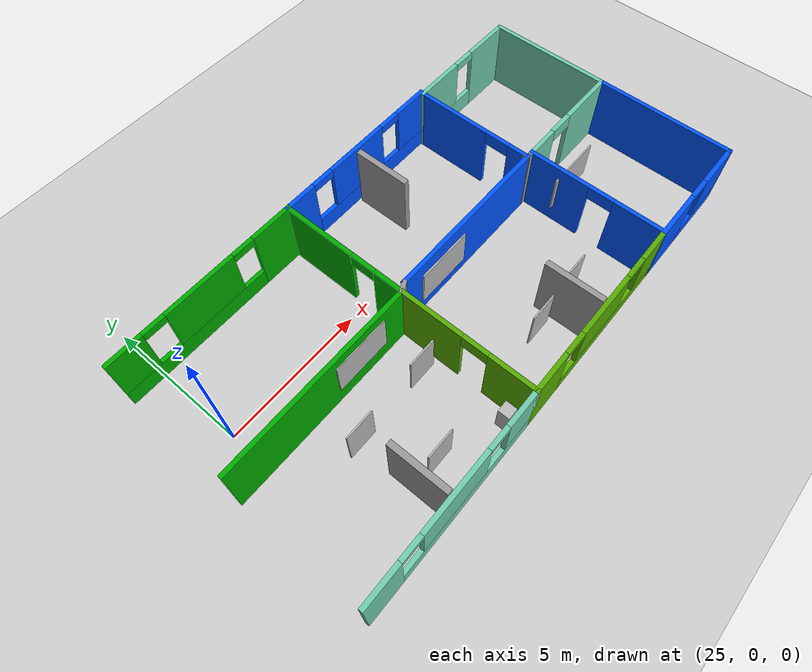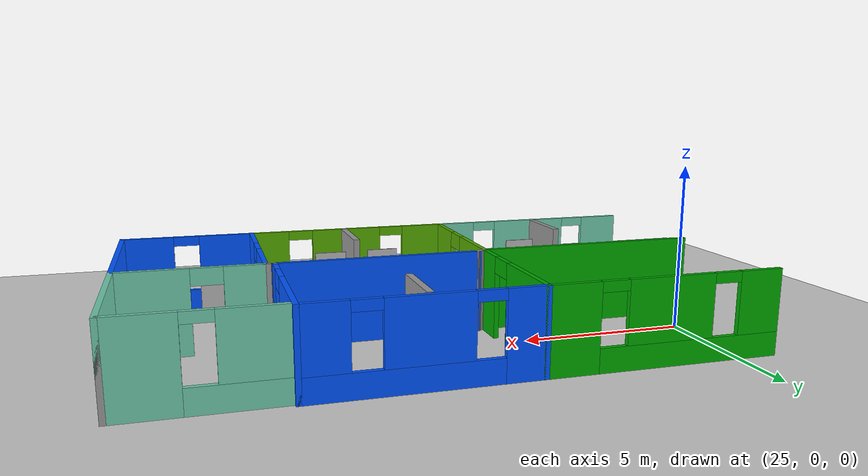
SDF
<sdf version="1.6">
 <world name="default">
  <model name="ground_plane">
   <static>1</static>
   <link name="link">
    <collision name="collision">
     <geometry><plane><normal>0 0 1</normal><size>100 100</size></plane></geometry>
     <surface><friction><ode><mu>100</mu><mu2>50</mu2></ode></friction></surface>
    </collision>
    <visual name="visual">
     <cast_shadows>0</cast_shadows>
     <geometry><plane><normal>0 0 1</normal><size>100 100</size></plane></geometry>
     <material>
      <script><uri>file://media/materials/scripts/gazebo.material</uri><name>Gazebo/Grey</name></script>
     </material>
    </visual>
   </link>
  </model>
  <model name="gallery2">
   <pose>17.6734 2.86394 0 0 -0 0</pose>
   <link name="Wall_50">
    <collision name="Wall_50_Collision">
     <geometry><box><size>7 0.15 2.5</size></box></geometry>
     <pose>0 0 1.25 0 -0 0</pose>
    </collision>
    <visual name="Wall_50_Visual">
     <pose>0 0 1.25 0 -0 0</pose>
     <geometry><box><size>7 0.15 2.5</size></box></geometry>
     <material>
      <script><uri>file://media/materials/scripts/gazebo.material</uri><name>Gazebo/Grey</name></script>
      <ambient>0 0.666667 0 1</ambient>
     </material>
     <meta><layer>0</layer></meta>
    </visual>
    <pose>9.6624 -4.40606 0 0 -0 0</pose>
   </link>
   <link name="Wall_51">
    <pose>13.0874 -2.10606 0 0 -0 1.5708</pose>
    <visual name="Wall_51_Visual_0">
     <pose>-1.81304 0 1.25 0 -0 0</pose>
     <geometry><box><size>1.12391 0.15 2.5</size></box></geometry>
     <material>
      <script><uri>file://media/materials/scripts/gazebo.material</uri><name>Gazebo/Grey</name></script>
      <ambient>0 0.666667 0 1</ambient>
     </material>
     <meta><layer>0</layer></meta>
    </visual>
    <collision name="Wall_51_Collision_0">
     <geometry><box><size>1.12391 0.15 2.5</size></box></geometry>
     <pose>-1.81304 0 1.25 0 -0 0</pose>
    </collision>
    <visual name="Wall_51_Visual_1">
     <pose>1.01196 0 1.25 0 -0 0</pose>
     <geometry><box><size>2.72608 0.15 2.5</size></box></geometry>
     <material>
      <script><uri>file://media/materials/scripts/gazebo.material</uri><name>Gazebo/Grey</name></script>
      <ambient>0 0.666667 0 1</ambient>
     </material>
     <meta><layer>0</layer></meta>
    </visual>
    <collision name="Wall_51_Collision_1">
     <geometry><box><size>2.72608 0.15 2.5</size></box></geometry>
     <pose>1.01196 0 1.25 0 -0 0</pose>
    </collision>
    <visual name="Wall_51_Visual_2">
     <pose>-0.801085 0 2.25 0 -0 0</pose>
     <geometry><box><size>0.9 0.15 0.5</size></box></geometry>
     <material>
      <script><uri>file://media/materials/scripts/gazebo.material</uri><name>Gazebo/Grey</name></script>
      <ambient>0 0.666667 0 1</ambient>
     </material>
     <meta><layer>0</layer></meta>
    </visual>
    <collision name="Wall_51_Collision_2">
     <geometry><box><size>0.9 0.15 0.5</size></box></geometry>
     <pose>-0.801085 0 2.25 0 -0 0</pose>
    </collision>
   </link>
   <link name="Wall_52">
    <pose>9.6624 0.193941 0 0 -0 3.14159</pose>
    <visual name="Wall_52_Visual_0">
     <pose>-2.72135 0 1.25 0 -0 0</pose>
     <geometry><box><size>1.5573 0.15 2.5</size></box></geometry>
     <material>
      <script><uri>file://media/materials/scripts/gazebo.material</uri><name>Gazebo/Grey</name></script>
      <ambient>0 0.666667 0 1</ambient>
     </material>
     <meta><layer>0</layer></meta>
    </visual>
    <collision name="Wall_52_Collision_0">
     <geometry><box><size>1.5573 0.15 2.5</size></box></geometry>
     <pose>-2.72135 0 1.25 0 -0 0</pose>
    </collision>
    <visual name="Wall_52_Visual_1">
     <pose>0.77865 0 0.35 0 -0 0</pose>
     <geometry><box><size>5.4427 0.15 0.7</size></box></geometry>
     <material>
      <script><uri>file://media/materials/scripts/gazebo.material</uri><name>Gazebo/Grey</name></script>
      <ambient>0 0.666667 0 1</ambient>
     </material>
     <meta><layer>0</layer></meta>
    </visual>
    <collision name="Wall_52_Collision_1">
     <geometry><box><size>5.4427 0.15 0.7</size></box></geometry>
     <pose>0.77865 0 0.35 0 -0 0</pose>
    </collision>
    <visual name="Wall_52_Visual_2">
     <pose>0.136207 0 1.6 0 -0 0</pose>
     <geometry><box><size>2.55781 0.15 1.8</size></box></geometry>
     <material>
      <script><uri>file://media/materials/scripts/gazebo.material</uri><name>Gazebo/Grey</name></script>
      <ambient>0 0.666667 0 1</ambient>
     </material>
     <meta><layer>0</layer></meta>
    </visual>
    <collision name="Wall_52_Collision_2">
     <geometry><box><size>2.55781 0.15 1.8</size></box></geometry>
     <pose>0.136207 0 1.6 0 -0 0</pose>
    </collision>
    <visual name="Wall_52_Visual_3">
     <pose>2.85756 0 1.6 0 -0 0</pose>
     <geometry><box><size>1.28489 0.15 1.8</size></box></geometry>
     <material>
      <script><uri>file://media/materials/scripts/gazebo.material</uri><name>Gazebo/Grey</name></script>
      <ambient>0 0.666667 0 1</ambient>
     </material>
     <meta><layer>0</layer></meta>
    </visual>
    <collision name="Wall_52_Collision_3">
     <geometry><box><size>1.28489 0.15 1.8</size></box></geometry>
     <pose>2.85756 0 1.6 0 -0 0</pose>
    </collision>
    <visual name="Wall_52_Visual_4">
     <pose>-1.5427 0 2.35 0 -0 0</pose>
     <geometry><box><size>0.8 0.15 0.3</size></box></geometry>
     <material>
      <script><uri>file://media/materials/scripts/gazebo.material</uri><name>Gazebo/Grey</name></script>
      <ambient>0 0.666667 0 1</ambient>
     </material>
     <meta><layer>0</layer></meta>
    </visual>
    <collision name="Wall_52_Collision_4">
     <geometry><box><size>0.8 0.15 0.3</size></box></geometry>
     <pose>-1.5427 0 2.35 0 -0 0</pose>
    </collision>
    <visual name="Wall_52_Visual_5">
     <pose>1.81511 0 2.35 0 -0 0</pose>
     <geometry><box><size>0.8 0.15 0.3</size></box></geometry>
     <material>
      <script><uri>file://media/materials/scripts/gazebo.material</uri><name>Gazebo/Grey</name></script>
      <ambient>0 0.666667 0 1</ambient>
     </material>
     <meta><layer>0</layer></meta>
    </visual>
    <collision name="Wall_52_Collision_5">
     <geometry><box><size>0.8 0.15 0.3</size></box></geometry>
     <pose>1.81511 0 2.35 0 -0 0</pose>
    </collision>
   </link>
   <link name="Wall_54">
    <pose>9.6624 -9.10606 0 0 -0 0</pose>
    <visual name="Wall_54_Visual_0">
     <pose>-2.81374 0 1.25 0 -0 0</pose>
     <geometry><box><size>1.37253 0.15 2.5</size></box></geometry>
     <material>
      <script><uri>file://media/materials/scripts/gazebo.material</uri><name>Gazebo/Grey</name></script>
      <ambient>0.435294 0.796078 0.67451 1</ambient>
     </material>
     <meta><layer>0</layer></meta>
    </visual>
    <collision name="Wall_54_Collision_0">
     <geometry><box><size>1.37253 0.15 2.5</size></box></geometry>
     <pose>-2.81374 0 1.25 0 -0 0</pose>
    </collision>
    <visual name="Wall_54_Visual_1">
     <pose>0.686264 0 0.35 0 -0 0</pose>
     <geometry><box><size>5.62747 0.15 0.7</size></box></geometry>
     <material>
      <script><uri>file://media/materials/scripts/gazebo.material</uri><name>Gazebo/Grey</name></script>
      <ambient>0.435294 0.796078 0.67451 1</ambient>
     </material>
     <meta><layer>0</layer></meta>
    </visual>
    <collision name="Wall_54_Collision_1">
     <geometry><box><size>5.62747 0.15 0.7</size></box></geometry>
     <pose>0.686264 0 0.35 0 -0 0</pose>
    </collision>
    <visual name="Wall_54_Visual_2">
     <pose>0.012181 0 1.6 0 -0 0</pose>
     <geometry><box><size>2.67931 0.15 1.8</size></box></geometry>
     <material>
      <script><uri>file://media/materials/scripts/gazebo.material</uri><name>Gazebo/Grey</name></script>
      <ambient>0.435294 0.796078 0.67451 1</ambient>
     </material>
     <meta><layer>0</layer></meta>
    </visual>
    <collision name="Wall_54_Collision_2">
     <geometry><box><size>2.67931 0.15 1.8</size></box></geometry>
     <pose>0.012181 0 1.6 0 -0 0</pose>
    </collision>
    <visual name="Wall_54_Visual_3">
     <pose>2.82592 0 1.6 0 -0 0</pose>
     <geometry><box><size>1.34817 0.15 1.8</size></box></geometry>
     <material>
      <script><uri>file://media/materials/scripts/gazebo.material</uri><name>Gazebo/Grey</name></script>
      <ambient>0.435294 0.796078 0.67451 1</ambient>
     </material>
     <meta><layer>0</layer></meta>
    </visual>
    <collision name="Wall_54_Collision_3">
     <geometry><box><size>1.34817 0.15 1.8</size></box></geometry>
     <pose>2.82592 0 1.6 0 -0 0</pose>
    </collision>
    <visual name="Wall_54_Visual_4">
     <pose>-1.72747 0 2.35 0 -0 0</pose>
     <geometry><box><size>0.8 0.15 0.3</size></box></geometry>
     <material>
      <script><uri>file://media/materials/scripts/gazebo.material</uri><name>Gazebo/Grey</name></script>
      <ambient>0.435294 0.796078 0.67451 1</ambient>
     </material>
     <meta><layer>0</layer></meta>
    </visual>
    <collision name="Wall_54_Collision_4">
     <geometry><box><size>0.8 0.15 0.3</size></box></geometry>
     <pose>-1.72747 0 2.35 0 -0 0</pose>
    </collision>
    <visual name="Wall_54_Visual_5">
     <pose>1.75183 0 2.35 0 -0 0</pose>
     <geometry><box><size>0.8 0.15 0.3</size></box></geometry>
     <material>
      <script><uri>file://media/materials/scripts/gazebo.material</uri><name>Gazebo/Grey</name></script>
      <ambient>0.435294 0.796078 0.67451 1</ambient>
     </material>
     <meta><layer>0</layer></meta>
    </visual>
    <collision name="Wall_54_Collision_5">
     <geometry><box><size>0.8 0.15 0.3</size></box></geometry>
     <pose>1.75183 0 2.35 0 -0 0</pose>
    </collision>
   </link>
   <link name="Wall_55">
    <pose>13.0874 -6.75606 0 0 -0 1.5708</pose>
    <visual name="Wall_55_Visual_0">
     <pose>-1.58786 0 1.25 0 -0 0</pose>
     <geometry><box><size>1.67428 0.15 2.5</size></box></geometry>
     <material>
      <script><uri>file://media/materials/scripts/gazebo.material</uri><name>Gazebo/Grey</name></script>
      <ambient>0.333333 0.666667 0 1</ambient>
     </material>
     <meta><layer>0</layer></meta>
    </visual>
    <collision name="Wall_55_Collision_0">
     <geometry><box><size>1.67428 0.15 2.5</size></box></geometry>
     <pose>-1.58786 0 1.25 0 -0 0</pose>
    </collision>
    <visual name="Wall_55_Visual_1">
     <pose>1.28714 0 1.25 0 -0 0</pose>
     <geometry><box><size>2.27572 0.15 2.5</size></box></geometry>
     <material>
      <script><uri>file://media/materials/scripts/gazebo.material</uri><name>Gazebo/Grey</name></script>
      <ambient>0.333333 0.666667 0 1</ambient>
     </material>
     <meta><layer>0</layer></meta>
    </visual>
    <collision name="Wall_55_Collision_1">
     <geometry><box><size>2.27572 0.15 2.5</size></box></geometry>
     <pose>1.28714 0 1.25 0 -0 0</pose>
    </collision>
    <visual name="Wall_55_Visual_2">
     <pose>-0.300716 0 2.25 0 -0 0</pose>
     <geometry><box><size>0.9 0.15 0.5</size></box></geometry>
     <material>
      <script><uri>file://media/materials/scripts/gazebo.material</uri><name>Gazebo/Grey</name></script>
      <ambient>0.333333 0.666667 0 1</ambient>
     </material>
     <meta><layer>0</layer></meta>
    </visual>
    <collision name="Wall_55_Collision_2">
     <geometry><box><size>0.9 0.15 0.5</size></box></geometry>
     <pose>-0.300716 0 2.25 0 -0 0</pose>
    </collision>
   </link>
   <link name="Wall_57">
    <pose>16.2624 0.193941 0 0 -0 0</pose>
    <visual name="Wall_57_Visual_0">
     <pose>-2.65451 0 1.25 0 -0 0</pose>
     <geometry><box><size>1.19097 0.15 2.5</size></box></geometry>
     <material>
      <script><uri>file://media/materials/scripts/gazebo.material</uri><name>Gazebo/Grey</name></script>
      <ambient>0 0.333333 1 1</ambient>
     </material>
     <meta><layer>0</layer></meta>
    </visual>
    <collision name="Wall_57_Collision_0">
     <geometry><box><size>1.19097 0.15 2.5</size></box></geometry>
     <pose>-2.65451 0 1.25 0 -0 0</pose>
    </collision>
    <visual name="Wall_57_Visual_1">
     <pose>0.595485 0 0.35 0 -0 0</pose>
     <geometry><box><size>5.30903 0.15 0.7</size></box></geometry>
     <material>
      <script><uri>file://media/materials/scripts/gazebo.material</uri><name>Gazebo/Grey</name></script>
      <ambient>0 0.333333 1 1</ambient>
     </material>
     <meta><layer>0</layer></meta>
    </visual>
    <collision name="Wall_57_Collision_1">
     <geometry><box><size>5.30903 0.15 0.7</size></box></geometry>
     <pose>0.595485 0 0.35 0 -0 0</pose>
    </collision>
    <visual name="Wall_57_Visual_2">
     <pose>-0.081252 0 1.6 0 -0 0</pose>
     <geometry><box><size>2.35556 0.15 1.8</size></box></geometry>
     <material>
      <script><uri>file://media/materials/scripts/gazebo.material</uri><name>Gazebo/Grey</name></script>
      <ambient>0 0.333333 1 1</ambient>
     </material>
     <meta><layer>0</layer></meta>
    </visual>
    <collision name="Wall_57_Collision_2">
     <geometry><box><size>2.35556 0.15 1.8</size></box></geometry>
     <pose>-0.081252 0 1.6 0 -0 0</pose>
    </collision>
    <visual name="Wall_57_Visual_3">
     <pose>2.57326 0 1.6 0 -0 0</pose>
     <geometry><box><size>1.35347 0.15 1.8</size></box></geometry>
     <material>
      <script><uri>file://media/materials/scripts/gazebo.material</uri><name>Gazebo/Grey</name></script>
      <ambient>0 0.333333 1 1</ambient>
     </material>
     <meta><layer>0</layer></meta>
    </visual>
    <collision name="Wall_57_Collision_3">
     <geometry><box><size>1.35347 0.15 1.8</size></box></geometry>
     <pose>2.57326 0 1.6 0 -0 0</pose>
    </collision>
    <visual name="Wall_57_Visual_4">
     <pose>-1.65903 0 2.35 0 -0 0</pose>
     <geometry><box><size>0.8 0.15 0.3</size></box></geometry>
     <material>
      <script><uri>file://media/materials/scripts/gazebo.material</uri><name>Gazebo/Grey</name></script>
      <ambient>0 0.333333 1 1</ambient>
     </material>
     <meta><layer>0</layer></meta>
    </visual>
    <collision name="Wall_57_Collision_4">
     <geometry><box><size>0.8 0.15 0.3</size></box></geometry>
     <pose>-1.65903 0 2.35 0 -0 0</pose>
    </collision>
    <visual name="Wall_57_Visual_5">
     <pose>1.49653 0 2.35 0 -0 0</pose>
     <geometry><box><size>0.8 0.15 0.3</size></box></geometry>
     <material>
      <script><uri>file://media/materials/scripts/gazebo.material</uri><name>Gazebo/Grey</name></script>
      <ambient>0 0.333333 1 1</ambient>
     </material>
     <meta><layer>0</layer></meta>
    </visual>
    <collision name="Wall_57_Collision_5">
     <geometry><box><size>0.8 0.15 0.3</size></box></geometry>
     <pose>1.49653 0 2.35 0 -0 0</pose>
    </collision>
   </link>
   <link name="Wall_58">
    <pose>19.4374 -1.98106 0 0 0 -1.5708</pose>
    <visual name="Wall_58_Visual_0">
     <pose>-0.807157 0 1.25 0 -0 0</pose>
     <geometry><box><size>2.88569 0.15 2.5</size></box></geometry>
     <material>
      <script><uri>file://media/materials/scripts/gazebo.material</uri><name>Gazebo/Grey</name></script>
      <ambient>0 0.333333 1 1</ambient>
     </material>
     <meta><layer>0</layer></meta>
    </visual>
    <collision name="Wall_58_Collision_0">
     <geometry><box><size>2.88569 0.15 2.5</size></box></geometry>
     <pose>-0.807157 0 1.25 0 -0 0</pose>
    </collision>
    <visual name="Wall_58_Visual_1">
     <pose>1.89284 0 1.25 0 -0 0</pose>
     <geometry><box><size>0.714314 0.15 2.5</size></box></geometry>
     <material>
      <script><uri>file://media/materials/scripts/gazebo.material</uri><name>Gazebo/Grey</name></script>
      <ambient>0 0.333333 1 1</ambient>
     </material>
     <meta><layer>0</layer></meta>
    </visual>
    <collision name="Wall_58_Collision_1">
     <geometry><box><size>0.714314 0.15 2.5</size></box></geometry>
     <pose>1.89284 0 1.25 0 -0 0</pose>
    </collision>
    <visual name="Wall_58_Visual_2">
     <pose>1.08569 0 2.25 0 -0 0</pose>
     <geometry><box><size>0.9 0.15 0.5</size></box></geometry>
     <material>
      <script><uri>file://media/materials/scripts/gazebo.material</uri><name>Gazebo/Grey</name></script>
      <ambient>0 0.333333 1 1</ambient>
     </material>
     <meta><layer>0</layer></meta>
    </visual>
    <collision name="Wall_58_Collision_2">
     <geometry><box><size>0.9 0.15 0.5</size></box></geometry>
     <pose>1.08569 0 2.25 0 -0 0</pose>
    </collision>
   </link>
   <link name="Wall_59">
    <collision name="Wall_59_Collision">
     <geometry><box><size>0.25 0.15 2.5</size></box></geometry>
     <pose>0 0 1.25 0 -0 0</pose>
    </collision>
    <visual name="Wall_59_Visual">
     <pose>0 0 1.25 0 -0 0</pose>
     <geometry><box><size>0.25 0.15 2.5</size></box></geometry>
     <material>
      <script><uri>file://media/materials/scripts/gazebo.material</uri><name>Gazebo/Grey</name></script>
      <ambient>1 1 1 1</ambient>
     </material>
     <meta><layer>0</layer></meta>
    </visual>
    <pose>19.4503 -4.20435 0 0 0 -1.309</pose>
   </link>
   <link name="Wall_60">
    <collision name="Wall_60_Collision">
     <geometry><box><size>6.25 0.15 2.5</size></box></geometry>
     <pose>0 0 1.25 0 -0 0</pose>
    </collision>
    <visual name="Wall_60_Visual">
     <pose>0 0 1.25 0 -0 0</pose>
     <geometry><box><size>6.25 0.15 2.5</size></box></geometry>
     <material>
      <script><uri>file://media/materials/scripts/gazebo.material</uri><name>Gazebo/Grey</name></script>
      <ambient>0 0.333333 1 1</ambient>
     </material>
     <meta><layer>0</layer></meta>
    </visual>
    <pose>16.4133 -4.25265 0 0 -0 3.14159</pose>
   </link>
   <link name="Wall_61">
    <collision name="Wall_61_Collision">
     <geometry><box><size>0.465665 0.15 2.5</size></box></geometry>
     <pose>0 0 1.25 0 -0 0</pose>
    </collision>
    <visual name="Wall_61_Visual">
     <pose>0 0 1.25 0 -0 0</pose>
     <geometry><box><size>0.465665 0.15 2.5</size></box></geometry>
     <material>
      <script><uri>file://media/materials/scripts/gazebo.material</uri><name>Gazebo/Grey</name></script>
      <ambient>1 1 1 1</ambient>
     </material>
     <meta><layer>0</layer></meta>
    </visual>
    <pose>13.2253 -4.32935 0 0 0 -2.63411</pose>
   </link>
   <link name="Wall_63">
    <pose>16.3874 -9.10606 0 0 -0 0</pose>
    <visual name="Wall_63_Visual_0">
     <pose>-2.63533 0 1.25 0 -0 0</pose>
     <geometry><box><size>1.47934 0.15 2.5</size></box></geometry>
     <material>
      <script><uri>file://media/materials/scripts/gazebo.material</uri><name>Gazebo/Grey</name></script>
      <ambient>0.333333 0.666667 0 1</ambient>
     </material>
     <meta><layer>0</layer></meta>
    </visual>
    <collision name="Wall_63_Collision_0">
     <geometry><box><size>1.47934 0.15 2.5</size></box></geometry>
     <pose>-2.63533 0 1.25 0 -0 0</pose>
    </collision>
    <visual name="Wall_63_Visual_1">
     <pose>0.73967 0 0.35 0 -0 0</pose>
     <geometry><box><size>5.27066 0.15 0.7</size></box></geometry>
     <material>
      <script><uri>file://media/materials/scripts/gazebo.material</uri><name>Gazebo/Grey</name></script>
      <ambient>0.333333 0.666667 0 1</ambient>
     </material>
     <meta><layer>0</layer></meta>
    </visual>
    <collision name="Wall_63_Collision_1">
     <geometry><box><size>5.27066 0.15 0.7</size></box></geometry>
     <pose>0.73967 0 0.35 0 -0 0</pose>
    </collision>
    <visual name="Wall_63_Visual_2">
     <pose>0.082933 0 1.6 0 -0 0</pose>
     <geometry><box><size>2.35719 0.15 1.8</size></box></geometry>
     <material>
      <script><uri>file://media/materials/scripts/gazebo.material</uri><name>Gazebo/Grey</name></script>
      <ambient>0.333333 0.666667 0 1</ambient>
     </material>
     <meta><layer>0</layer></meta>
    </visual>
    <collision name="Wall_63_Collision_2">
     <geometry><box><size>2.35719 0.15 1.8</size></box></geometry>
     <pose>0.082933 0 1.6 0 -0 0</pose>
    </collision>
    <visual name="Wall_63_Visual_3">
     <pose>2.71826 0 1.6 0 -0 0</pose>
     <geometry><box><size>1.31347 0.15 1.8</size></box></geometry>
     <material>
      <script><uri>file://media/materials/scripts/gazebo.material</uri><name>Gazebo/Grey</name></script>
      <ambient>0.333333 0.666667 0 1</ambient>
     </material>
     <meta><layer>0</layer></meta>
    </visual>
    <collision name="Wall_63_Collision_3">
     <geometry><box><size>1.31347 0.15 1.8</size></box></geometry>
     <pose>2.71826 0 1.6 0 -0 0</pose>
    </collision>
    <visual name="Wall_63_Visual_4">
     <pose>-1.49566 0 2.35 0 -0 0</pose>
     <geometry><box><size>0.8 0.15 0.3</size></box></geometry>
     <material>
      <script><uri>file://media/materials/scripts/gazebo.material</uri><name>Gazebo/Grey</name></script>
      <ambient>0.333333 0.666667 0 1</ambient>
     </material>
     <meta><layer>0</layer></meta>
    </visual>
    <collision name="Wall_63_Collision_4">
     <geometry><box><size>0.8 0.15 0.3</size></box></geometry>
     <pose>-1.49566 0 2.35 0 -0 0</pose>
    </collision>
    <visual name="Wall_63_Visual_5">
     <pose>1.66153 0 2.35 0 -0 0</pose>
     <geometry><box><size>0.8 0.15 0.3</size></box></geometry>
     <material>
      <script><uri>file://media/materials/scripts/gazebo.material</uri><name>Gazebo/Grey</name></script>
      <ambient>0.333333 0.666667 0 1</ambient>
     </material>
     <meta><layer>0</layer></meta>
    </visual>
    <collision name="Wall_63_Collision_5">
     <geometry><box><size>0.8 0.15 0.3</size></box></geometry>
     <pose>1.66153 0 2.35 0 -0 0</pose>
    </collision>
   </link>
   <link name="Wall_64">
    <pose>19.6874 -6.68106 0 0 -0 1.5708</pose>
    <visual name="Wall_64_Visual_0">
     <pose>-1.58306 0 1.25 0 -0 0</pose>
     <geometry><box><size>1.83388 0.15 2.5</size></box></geometry>
     <material>
      <script><uri>file://media/materials/scripts/gazebo.material</uri><name>Gazebo/Grey</name></script>
      <ambient>0 0.333333 1 1</ambient>
     </material>
     <meta><layer>0</layer></meta>
    </visual>
    <collision name="Wall_64_Collision_0">
     <geometry><box><size>1.83388 0.15 2.5</size></box></geometry>
     <pose>-1.58306 0 1.25 0 -0 0</pose>
    </collision>
    <visual name="Wall_64_Visual_1">
     <pose>1.36694 0 1.25 0 -0 0</pose>
     <geometry><box><size>2.26612 0.15 2.5</size></box></geometry>
     <material>
      <script><uri>file://media/materials/scripts/gazebo.material</uri><name>Gazebo/Grey</name></script>
      <ambient>0 0.333333 1 1</ambient>
     </material>
     <meta><layer>0</layer></meta>
    </visual>
    <collision name="Wall_64_Collision_1">
     <geometry><box><size>2.26612 0.15 2.5</size></box></geometry>
     <pose>1.36694 0 1.25 0 -0 0</pose>
    </collision>
    <visual name="Wall_64_Visual_2">
     <pose>-0.216115 0 2.25 0 -0 0</pose>
     <geometry><box><size>0.9 0.15 0.5</size></box></geometry>
     <material>
      <script><uri>file://media/materials/scripts/gazebo.material</uri><name>Gazebo/Grey</name></script>
      <ambient>0 0.333333 1 1</ambient>
     </material>
     <meta><layer>0</layer></meta>
    </visual>
    <collision name="Wall_64_Collision_2">
     <geometry><box><size>0.9 0.15 0.5</size></box></geometry>
     <pose>-0.216115 0 2.25 0 -0 0</pose>
    </collision>
   </link>
   <link name="Wall_65">
    <collision name="Wall_65_Collision">
     <geometry><box><size>0.374144 0.15 2.5</size></box></geometry>
     <pose>0 0 1.25 0 -0 0</pose>
    </collision>
    <visual name="Wall_65_Visual">
     <pose>0 0 1.25 0 -0 0</pose>
     <geometry><box><size>0.374144 0.15 2.5</size></box></geometry>
     <material>
      <script><uri>file://media/materials/scripts/gazebo.material</uri><name>Gazebo/Grey</name></script>
      <ambient>1 1 1 1</ambient>
     </material>
     <meta><layer>0</layer></meta>
    </visual>
    <pose>19.5753 -4.25436 0 0 -0 3.12639</pose>
   </link>
   <link name="Wall_67">
    <pose>21.7374 -9.10606 0 0 -0 0</pose>
    <visual name="Wall_67_Visual_0">
     <pose>-1.22897 0 1.25 0 -0 0</pose>
     <geometry><box><size>1.79206 0.15 2.5</size></box></geometry>
     <material>
      <script><uri>file://media/materials/scripts/gazebo.material</uri><name>Gazebo/Grey</name></script>
      <ambient>0 0.333333 1 1</ambient>
     </material>
     <meta><layer>0</layer></meta>
    </visual>
    <collision name="Wall_67_Collision_0">
     <geometry><box><size>1.79206 0.15 2.5</size></box></geometry>
     <pose>-1.22897 0 1.25 0 -0 0</pose>
    </collision>
    <visual name="Wall_67_Visual_1">
     <pose>0.89603 0 0.35 0 -0 0</pose>
     <geometry><box><size>2.45794 0.15 0.7</size></box></geometry>
     <material>
      <script><uri>file://media/materials/scripts/gazebo.material</uri><name>Gazebo/Grey</name></script>
      <ambient>0 0.333333 1 1</ambient>
     </material>
     <meta><layer>0</layer></meta>
    </visual>
    <collision name="Wall_67_Collision_1">
     <geometry><box><size>2.45794 0.15 0.7</size></box></geometry>
     <pose>0.89603 0 0.35 0 -0 0</pose>
    </collision>
    <visual name="Wall_67_Visual_2">
     <pose>1.29603 0 1.6 0 -0 0</pose>
     <geometry><box><size>1.65794 0.15 1.8</size></box></geometry>
     <material>
      <script><uri>file://media/materials/scripts/gazebo.material</uri><name>Gazebo/Grey</name></script>
      <ambient>0 0.333333 1 1</ambient>
     </material>
     <meta><layer>0</layer></meta>
    </visual>
    <collision name="Wall_67_Collision_2">
     <geometry><box><size>1.65794 0.15 1.8</size></box></geometry>
     <pose>1.29603 0 1.6 0 -0 0</pose>
    </collision>
    <visual name="Wall_67_Visual_3">
     <pose>0.06706 0 2.35 0 -0 0</pose>
     <geometry><box><size>0.8 0.15 0.3</size></box></geometry>
     <material>
      <script><uri>file://media/materials/scripts/gazebo.material</uri><name>Gazebo/Grey</name></script>
      <ambient>0 0.333333 1 1</ambient>
     </material>
     <meta><layer>0</layer></meta>
    </visual>
    <collision name="Wall_67_Collision_3">
     <geometry><box><size>0.8 0.15 0.3</size></box></geometry>
     <pose>0.06706 0 2.35 0 -0 0</pose>
    </collision>
   </link>
   <link name="Wall_68">
    <collision name="Wall_68_Collision">
     <geometry><box><size>5 0.15 2.5</size></box></geometry>
     <pose>0 0 1.25 0 -0 0</pose>
    </collision>
    <visual name="Wall_68_Visual">
     <pose>0 0 1.25 0 -0 0</pose>
     <geometry><box><size>5 0.15 2.5</size></box></geometry>
     <material>
      <script><uri>file://media/materials/scripts/gazebo.material</uri><name>Gazebo/Grey</name></script>
      <ambient>0 0.333333 1 1</ambient>
     </material>
     <meta><layer>0</layer></meta>
    </visual>
    <pose>23.7874 -6.68106 0 0 -0 1.5708</pose>
   </link>
   <link name="Wall_69">
    <pose>21.7374 -4.25606 0 0 -0 3.14159</pose>
    <visual name="Wall_69_Visual_0">
     <pose>-1.06867 0 1.25 0 -0 0</pose>
     <geometry><box><size>2.11266 0.15 2.5</size></box></geometry>
     <material>
      <script><uri>file://media/materials/scripts/gazebo.material</uri><name>Gazebo/Grey</name></script>
      <ambient>0.435294 0.796078 0.67451 1</ambient>
     </material>
     <meta><layer>0</layer></meta>
    </visual>
    <collision name="Wall_69_Collision_0">
     <geometry><box><size>2.11266 0.15 2.5</size></box></geometry>
     <pose>-1.06867 0 1.25 0 -0 0</pose>
    </collision>
    <visual name="Wall_69_Visual_1">
     <pose>1.50633 0 1.25 0 -0 0</pose>
     <geometry><box><size>1.23734 0.15 2.5</size></box></geometry>
     <material>
      <script><uri>file://media/materials/scripts/gazebo.material</uri><name>Gazebo/Grey</name></script>
      <ambient>0.435294 0.796078 0.67451 1</ambient>
     </material>
     <meta><layer>0</layer></meta>
    </visual>
    <collision name="Wall_69_Collision_1">
     <geometry><box><size>1.23734 0.15 2.5</size></box></geometry>
     <pose>1.50633 0 1.25 0 -0 0</pose>
    </collision>
    <visual name="Wall_69_Visual_2">
     <pose>0.437662 0 2.25 0 -0 0</pose>
     <geometry><box><size>0.9 0.15 0.5</size></box></geometry>
     <material>
      <script><uri>file://media/materials/scripts/gazebo.material</uri><name>Gazebo/Grey</name></script>
      <ambient>0.435294 0.796078 0.67451 1</ambient>
     </material>
     <meta><layer>0</layer></meta>
    </visual>
    <collision name="Wall_69_Collision_2">
     <geometry><box><size>0.9 0.15 0.5</size></box></geometry>
     <pose>0.437662 0 2.25 0 -0 0</pose>
    </collision>
   </link>
   <link name="Wall_71">
    <collision name="Wall_71_Collision">
     <geometry><box><size>4.5 0.15 2.5</size></box></geometry>
     <pose>0 0 1.25 0 -0 0</pose>
    </collision>
    <visual name="Wall_71_Visual">
     <pose>0 0 1.25 0 -0 0</pose>
     <geometry><box><size>4.5 0.15 2.5</size></box></geometry>
     <material>
      <script><uri>file://media/materials/scripts/gazebo.material</uri><name>Gazebo/Grey</name></script>
      <ambient>0.435294 0.796078 0.67451 1</ambient>
     </material>
     <meta><layer>0</layer></meta>
    </visual>
    <pose>23.7874 -2.08106 0 0 -0 1.5708</pose>
   </link>
   <link name="Wall_72">
    <collision name="Wall_72_Collision">
     <geometry><box><size>0.15 0.15 2.5</size></box></geometry>
     <pose>0 0 1.25 0 -0 0</pose>
    </collision>
    <visual name="Wall_72_Visual">
     <pose>0 0 1.25 0 -0 0</pose>
     <geometry><box><size>0.15 0.15 2.5</size></box></geometry>
     <material>
      <script><uri>file://media/materials/scripts/gazebo.material</uri><name>Gazebo/Grey</name></script>
      <ambient>1 1 1 1</ambient>
     </material>
     <meta><layer>0</layer></meta>
    </visual>
    <pose>23.7874 0.093941 0 0 -0 0</pose>
   </link>
   <link name="Wall_73">
    <collision name="Wall_73_Collision">
     <geometry><box><size>0.15 0.15 2.5</size></box></geometry>
     <pose>0 0 1.25 0 -0 0</pose>
    </collision>
    <visual name="Wall_73_Visual">
     <pose>0 0 1.25 0 -0 0</pose>
     <geometry><box><size>0.15 0.15 2.5</size></box></geometry>
     <material>
      <script><uri>file://media/materials/scripts/gazebo.material</uri><name>Gazebo/Grey</name></script>
      <ambient>1 1 1 1</ambient>
     </material>
     <meta><layer>0</layer></meta>
    </visual>
    <pose>23.7874 0.093941 0 0 -0 0</pose>
   </link>
   <link name="Wall_74">
    <pose>21.6124 0.093941 0 0 -0 3.14159</pose>
    <visual name="Wall_74_Visual_0">
     <pose>-1.34012 0 1.25 0 -0 0</pose>
     <geometry><box><size>1.81976 0.15 2.5</size></box></geometry>
     <material>
      <script><uri>file://media/materials/scripts/gazebo.material</uri><name>Gazebo/Grey</name></script>
      <ambient>0.435294 0.796078 0.67451 1</ambient>
     </material>
     <meta><layer>0</layer></meta>
    </visual>
    <collision name="Wall_74_Collision_0">
     <geometry><box><size>1.81976 0.15 2.5</size></box></geometry>
     <pose>-1.34012 0 1.25 0 -0 0</pose>
    </collision>
    <visual name="Wall_74_Visual_1">
     <pose>0.90988 0 0.35 0 -0 0</pose>
     <geometry><box><size>2.68024 0.15 0.7</size></box></geometry>
     <material>
      <script><uri>file://media/materials/scripts/gazebo.material</uri><name>Gazebo/Grey</name></script>
      <ambient>0.435294 0.796078 0.67451 1</ambient>
     </material>
     <meta><layer>0</layer></meta>
    </visual>
    <collision name="Wall_74_Collision_1">
     <geometry><box><size>2.68024 0.15 0.7</size></box></geometry>
     <pose>0.90988 0 0.35 0 -0 0</pose>
    </collision>
    <visual name="Wall_74_Visual_2">
     <pose>1.30988 0 1.6 0 -0 0</pose>
     <geometry><box><size>1.88024 0.15 1.8</size></box></geometry>
     <material>
      <script><uri>file://media/materials/scripts/gazebo.material</uri><name>Gazebo/Grey</name></script>
      <ambient>0.435294 0.796078 0.67451 1</ambient>
     </material>
     <meta><layer>0</layer></meta>
    </visual>
    <collision name="Wall_74_Collision_2">
     <geometry><box><size>1.88024 0.15 1.8</size></box></geometry>
     <pose>1.30988 0 1.6 0 -0 0</pose>
    </collision>
    <visual name="Wall_74_Visual_3">
     <pose>-0.030239 0 2.35 0 -0 0</pose>
     <geometry><box><size>0.8 0.15 0.3</size></box></geometry>
     <material>
      <script><uri>file://media/materials/scripts/gazebo.material</uri><name>Gazebo/Grey</name></script>
      <ambient>0.435294 0.796078 0.67451 1</ambient>
     </material>
     <meta><layer>0</layer></meta>
    </visual>
    <collision name="Wall_74_Collision_3">
     <geometry><box><size>0.8 0.15 0.3</size></box></geometry>
     <pose>-0.030239 0 2.35 0 -0 0</pose>
    </collision>
   </link>
   <static>1</static>
  </model>
  <model name="Decoration2">
   <link name="link_1">
    <inertial>
     <mass>1</mass>
     <inertia>
      <ixx>0.166667</ixx>
      <ixy>0</ixy>
      <ixz>0</ixz>
      <iyy>0.166667</iyy>
      <iyz>0</iyz>
      <izz>0.166667</izz>
     </inertia>
    </inertial>
    <visual name="visual">
     <geometry><box><size>2 0.2 2.5</size></box></geometry>
     <material>
      <lighting>1</lighting>
      <script><uri>file://media/materials/scripts/gazebo.material</uri><name>Gazebo/Grey</name></script>
      <ambient>0.3 0.3 0.3 1</ambient>
      <diffuse>0.7 0.7 0.7 1</diffuse>
      <specular>0.01 0.01 0.01 1</specular>
      <emissive>0 0 0 1</emissive>
      <shader type="vertex"><normal_map>__default__</normal_map></shader>
     </material>
    </visual>
    <collision name="collision">
     <geometry><box><size>2 0.2 2.5</size></box></geometry>
     <surface>
      <friction>
       <ode><mu>1</mu><mu2>1</mu2><fdir1>0 0 0</fdir1><slip1>0</slip1><slip2>0</slip2></ode>
       <torsional>
        <coefficient>1</coefficient>
        <patch_radius>0</patch_radius>
        <surface_radius>0</surface_radius>
        <use_patch_radius>1</use_patch_radius>
        <ode><slip>0</slip></ode>
       </torsional>
      </friction>
      <bounce><restitution_coefficient>0</restitution_coefficient><threshold>1e+06</threshold></bounce>
      <contact>
       <collide_without_contact>0</collide_without_contact>
       <collide_without_contact_bitmask>1</collide_without_contact_bitmask>
       <collide_bitmask>1</collide_bitmask>
       <ode>
        <soft_cfm>0</soft_cfm>
        <soft_erp>0.2</soft_erp>
        <kp>1e+13</kp>
        <kd>1</kd>
        <max_vel>0.01</max_vel>
        <min_depth>0</min_depth>
       </ode>
       <bullet>
        <split_impulse>1</split_impulse>
        <split_impulse_penetration_threshold>-0.01</split_impulse_penetration_threshold>
        <soft_cfm>0</soft_cfm>
        <soft_erp>0.2</soft_erp>
        <kp>1e+13</kp>
        <kd>1</kd>
       </bullet>
      </contact>
     </surface>
    </collision>
   </link>
   <static>0</static>
   <pose>33.8182 1.90409 1.25 0 -1e-06 1.57716</pose>
  </model>
  <include>
   <pose>38.1292 -2.54451 1.4 0 -0 0</pose>
   <name>rooma_img1p</name>
   <uri>model://leobot_gazebo/models/rooma_img1p</uri>
  </include>
  <include>
   <pose>32.6946 -1.55837 1.4 0 -0 0</pose>
   <name>rooma_img2p</name>
   <uri>model://leobot_gazebo/models/rooma_img2p</uri>
  </include>
  <model name="Decoration2_1">
   <link name="link_1">
    <inertial>
     <mass>1</mass>
     <inertia>
      <ixx>0.166667</ixx>
      <ixy>0</ixy>
      <ixz>0</ixz>
      <iyy>0.166667</iyy>
      <iyz>0</iyz>
      <izz>0.166667</izz>
     </inertia>
    </inertial>
    <visual name="visual">
     <geometry><box><size>2 0.2 2.5</size></box></geometry>
     <material>
      <lighting>1</lighting>
      <script><uri>file://media/materials/scripts/gazebo.material</uri><name>Gazebo/Grey</name></script>
      <ambient>0.3 0.3 0.3 1</ambient>
      <diffuse>0.7 0.7 0.7 1</diffuse>
      <specular>0.01 0.01 0.01 1</specular>
      <emissive>0 0 0 1</emissive>
      <shader type="vertex"><normal_map>__default__</normal_map></shader>
     </material>
    </visual>
    <collision name="collision">
     <geometry><box><size>2 0.2 2.5</size></box></geometry>
     <surface>
      <friction>
       <ode><mu>1</mu><mu2>1</mu2><fdir1>0 0 0</fdir1><slip1>0</slip1><slip2>0</slip2></ode>
       <torsional>
        <coefficient>1</coefficient>
        <patch_radius>0</patch_radius>
        <surface_radius>0</surface_radius>
        <use_patch_radius>1</use_patch_radius>
        <ode><slip>0</slip></ode>
       </torsional>
      </friction>
      <bounce><restitution_coefficient>0</restitution_coefficient><threshold>1e+06</threshold></bounce>
      <contact>
       <collide_without_contact>0</collide_without_contact>
       <collide_without_contact_bitmask>1</collide_without_contact_bitmask>
       <collide_bitmask>1</collide_bitmask>
       <ode>
        <soft_cfm>0</soft_cfm>
        <soft_erp>0.2</soft_erp>
        <kp>1e+13</kp>
        <kd>1</kd>
        <max_vel>0.01</max_vel>
        <min_depth>0</min_depth>
       </ode>
       <bullet>
        <split_impulse>1</split_impulse>
        <split_impulse_penetration_threshold>-0.01</split_impulse_penetration_threshold>
        <soft_cfm>0</soft_cfm>
        <soft_erp>0.2</soft_erp>
        <kp>1e+13</kp>
        <kd>1</kd>
       </bullet>
      </contact>
     </surface>
    </collision>
   </link>
   <static>0</static>
   <pose>34.212 -5.1409 1.25 0 1e-06 1.58085</pose>
  </model>
  <include>
   <pose>34.9577 -4.75056 1.2 0 -0 0</pose>
   <name>rooma_img4</name>
   <uri>model://leobot_gazebo/models/rooma_img4</uri>
  </include>
  <include>
   <pose>33.2007 -4.83543 1.2 0 -0 0</pose>
   <name>rooma_img5</name>
   <uri>model://leobot_gazebo/models/rooma_img5</uri>
  </include>
  <include>
   <pose>28.8815 -1.62609 1.4 0 -0 0</pose>
   <name>rooma_img6p</name>
   <uri>model://leobot_gazebo/models/rooma_img6p</uri>
  </include>
  <include>
   <pose>29.8287 -3.05859 1.2 0 -0 0</pose>
   <name>roomb_img1</name>
   <uri>model://leobot_gazebo/models/roomb_img1</uri>
  </include>
  <model name="Decoration2_2">
   <link name="link_1">
    <inertial>
     <mass>1</mass>
     <inertia>
      <ixx>0.166667</ixx>
      <ixy>0</ixy>
      <ixz>0</ixz>
      <iyy>0.166667</iyy>
      <iyz>0</iyz>
      <izz>0.166667</izz>
     </inertia>
    </inertial>
    <visual name="visual">
     <geometry><box><size>2 0.2 2.5</size></box></geometry>
     <material>
      <lighting>1</lighting>
      <script><uri>file://media/materials/scripts/gazebo.material</uri><name>Gazebo/Grey</name></script>
      <ambient>0.3 0.3 0.3 1</ambient>
      <diffuse>0.7 0.7 0.7 1</diffuse>
      <specular>0.01 0.01 0.01 1</specular>
      <emissive>0 0 0 1</emissive>
      <shader type="vertex"><normal_map>__default__</normal_map></shader>
     </material>
    </visual>
    <collision name="collision">
     <geometry><box><size>2 0.2 2.5</size></box></geometry>
     <surface>
      <friction>
       <ode><mu>1</mu><mu2>1</mu2><fdir1>0 0 0</fdir1><slip1>0</slip1><slip2>0</slip2></ode>
       <torsional>
        <coefficient>1</coefficient>
        <patch_radius>0</patch_radius>
        <surface_radius>0</surface_radius>
        <use_patch_radius>1</use_patch_radius>
        <ode><slip>0</slip></ode>
       </torsional>
      </friction>
      <bounce><restitution_coefficient>0</restitution_coefficient><threshold>1e+06</threshold></bounce>
      <contact>
       <collide_without_contact>0</collide_without_contact>
       <collide_without_contact_bitmask>1</collide_without_contact_bitmask>
       <collide_bitmask>1</collide_bitmask>
       <ode>
        <soft_cfm>0</soft_cfm>
        <soft_erp>0.2</soft_erp>
        <kp>1e+13</kp>
        <kd>1</kd>
        <max_vel>0.01</max_vel>
        <min_depth>0</min_depth>
       </ode>
       <bullet>
        <split_impulse>1</split_impulse>
        <split_impulse_penetration_threshold>-0.01</split_impulse_penetration_threshold>
        <soft_cfm>0</soft_cfm>
        <soft_erp>0.2</soft_erp>
        <kp>1e+13</kp>
        <kd>1</kd>
       </bullet>
      </contact>
     </surface>
    </collision>
   </link>
   <static>0</static>
   <pose>27.2041 -5.14109 1.25 1e-06 -1e-06 1.58324</pose>
  </model>
  <include>
   <pose>27.1657 -3.12198 1.2 0 -0 0</pose>
   <name>roomb_img2</name>
   <uri>model://leobot_gazebo/models/roomb_img2</uri>
  </include>
  <include>
   <pose>28.1488 -5.08849 1.2 0 -0 0</pose>
   <name>roomb_img4</name>
   <uri>model://leobot_gazebo/models/roomb_img4</uri>
  </include>
  <include>
   <pose>30.373 -5.73726 0 0 -0 0</pose>
   <name>statuaa</name>
   <uri>model://leobot_gazebo/models/statuaa</uri>
  </include>
 </world>
</sdf>
